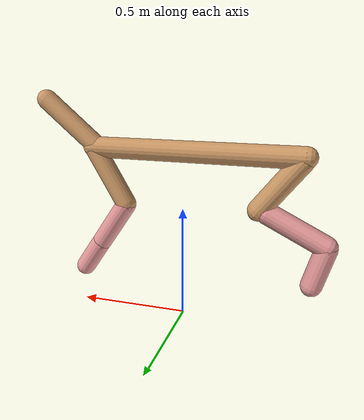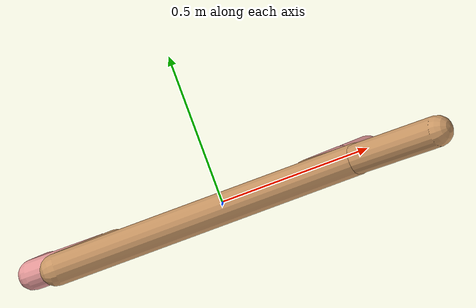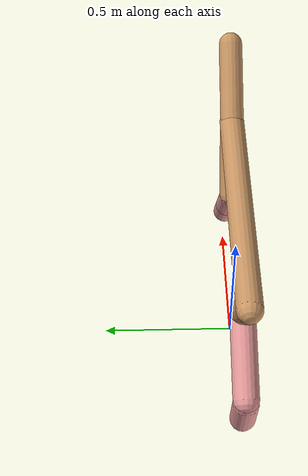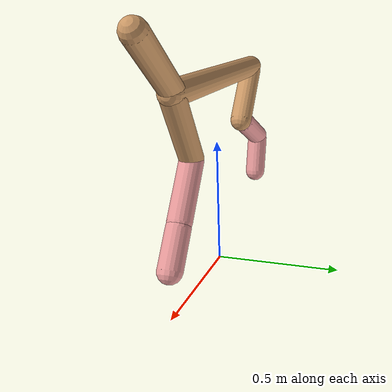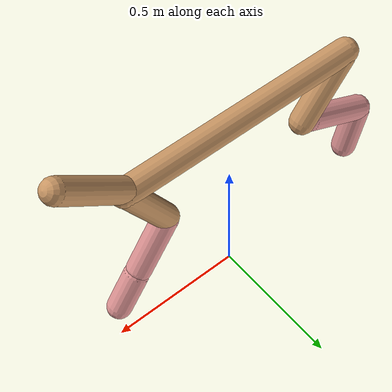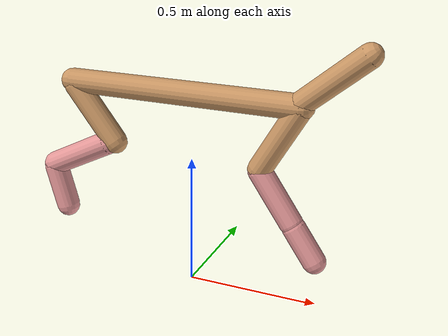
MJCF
<mujoco model="cheetah">
  <compiler angle="radian" coordinate="local" inertiafromgeom="true" settotalmass="14" />
  <default>
    <joint armature=".1" damping=".01" limited="true" solimplimit="0 .8 .03" solreflimit=".02 1" stiffness="8" />
    <geom conaffinity="0" condim="3" contype="1" friction="0.8 .1 .1" rgba="0.8 0.6 .4 1" solimp="0.0 0.8 0.01" solref="0.02 1" />
    <motor ctrllimited="true" ctrlrange="-1 1" />
  </default>
  <size nstack="300000" nuser_geom="1" />
  <option gravity="0 0 -9.81" timestep="0.01" />
  <worldbody>
    <body name="torso" pos="0.0 0.0 0.7519441582681881">
      <joint armature="0" axis="1 0 0" damping="0" limited="false" name="ignorex" pos="0 0 0" stiffness="0" type="slide" />
      <joint armature="0" axis="0 0 1" damping="0" limited="false" name="ignorez" pos="0 0 0" stiffness="0" type="slide" />
      <joint armature="0" axis="0 1 0" damping="0" limited="false" name="ignorey" pos="0 0 0" stiffness="0" type="hinge" />
      <geom fromto="-0.5 0.0 0.0 0.40951053769949364 0.0 0.0" name="torso" size="0.04609674952897354" type="capsule" />
      <geom axisangle="0 1 0 .87" name="head" pos="0.5095105376994936 0.0 0.1" size="0.04371395740245661 0.15" type="capsule" />

      <body name="bthigh" pos="-.5 0 0">
        <joint axis="0 1 0" damping="6" name="bthigh" pos="0 0 0" range="-.52 1.05" stiffness="240" type="hinge" />
        <geom axisangle="0 1 0 -3.8" name="bthigh" pos="0.09331361121348061 0.0 -0.12130769457752479" size="0.04663545338165531 0.13403350700715655" type="capsule" />
        <body name="bshin" pos="0.14662722242696122 0.0 -0.23261538915504956">
          <joint axis="0 1 0" damping="4.5" name="bshin" pos="0 0 0" range="-.785 .785" stiffness="180" type="hinge" />
          <geom axisangle="0 1 0 -2.03" name="bshin" pos="-0.12985303842478357 0.0 -0.06492651921239179" rgba="0.9 0.6 0.6 1" size="0.04663545338165531 0.13865535207636884" type="capsule" />
          <body name="bfoot" pos="-0.25970607684956715 0.0 -0.12985303842478357">
            <joint axis="0 1 0" damping="3" name="bfoot" pos="0 0 0" range="-.4 .785" stiffness="120" type="hinge" />
            <geom axisangle="0 1 0 -.27" name="bfoot" pos="0.02789941334671661 0.0 -0.09020810315438371" rgba="0.9 0.6 0.6 1" size="0.04663545338165531 0.08689068730119114" type="capsule" />
            <inertial mass="10" />
          </body>
        </body>
      </body>
      <body name="fthigh" pos="0.40951053769949364 0.0 0.0">
        <joint axis="0 1 0" damping="4.5" name="fthigh" pos="0 0 0" range="-1.5 0.8" stiffness="180" type="hinge" />
        <geom axisangle="0 1 0 .52" name="fthigh" pos="-0.0736412445475364 0.0 -0.1262421335100624" size="0.044787999516371434 0.14022654084693414" type="capsule" />
        <body name="fshin" pos="-0.1472824890950728 0.0 -0.2524842670201248">
          <joint axis="0 1 0" damping="3" name="fshin" pos="0 0 0" range="-1.2 1.1" stiffness="120" type="hinge" />
          <geom axisangle="0 1 0 -.6" name="fshin" pos="0.06837213209550479 0.0 -0.09466910597839123" rgba="0.9 0.6 0.6 1" size="0.044787999516371434 0.11175949872011291" type="capsule" />
          <body name="ffoot" pos="0.13674426419100957 0.0 -0.18933821195678247">
            <joint axis="0 1 0" damping="1.5" name="ffoot" pos="0 0 0" range="-3.1 -0.3" stiffness="60" type="hinge" />
            <geom axisangle="0 1 0 -.6" name="ffoot" pos="0.047056740432587736 0.0 -0.0731993740062476" rgba="0.9 0.6 0.6 1" size="0.044787999516371434 0.07380344255101796" type="capsule" />
            <inertial mass="10" />
          </body>
        </body>
      </body>
    </body>
  </worldbody>
  <actuator>
    <motor gear="120" joint="bthigh" name="bthigh" />
    <motor gear="90" joint="bshin" name="bshin" />
    <motor gear="60" joint="bfoot" name="bfoot" />
    <motor gear="120" joint="fthigh" name="fthigh" />
    <motor gear="60" joint="fshin" name="fshin" />
    <motor gear="30" joint="ffoot" name="ffoot" />
  </actuator>
</mujoco>
